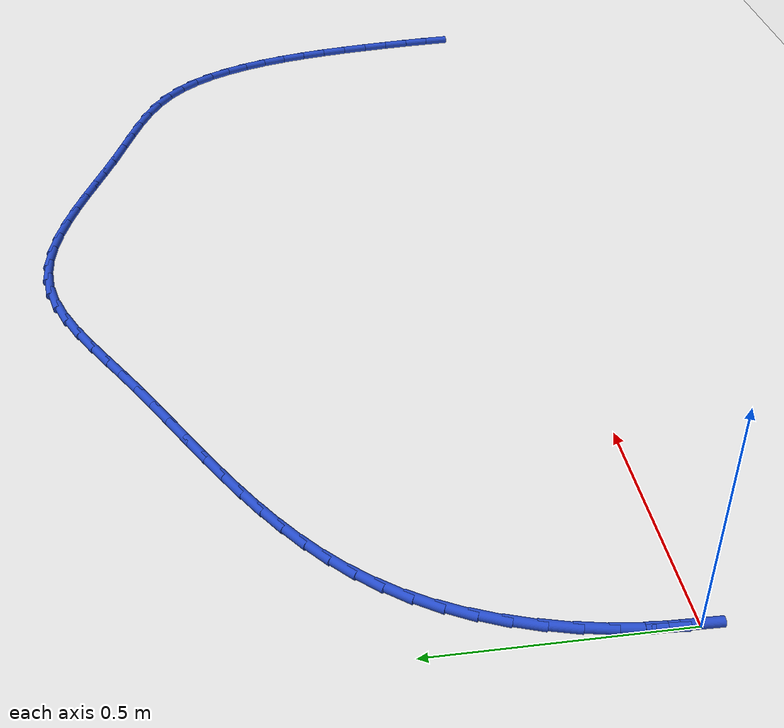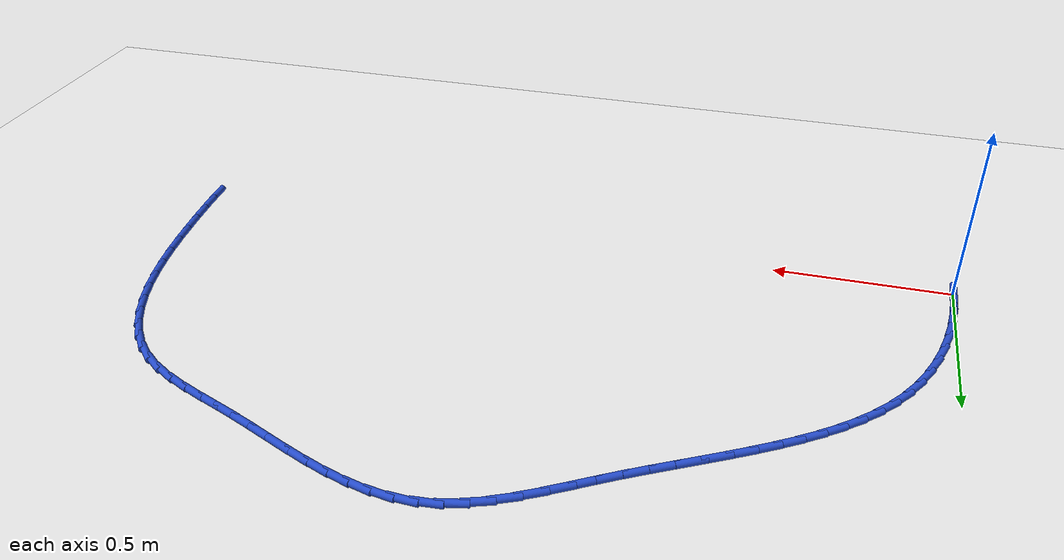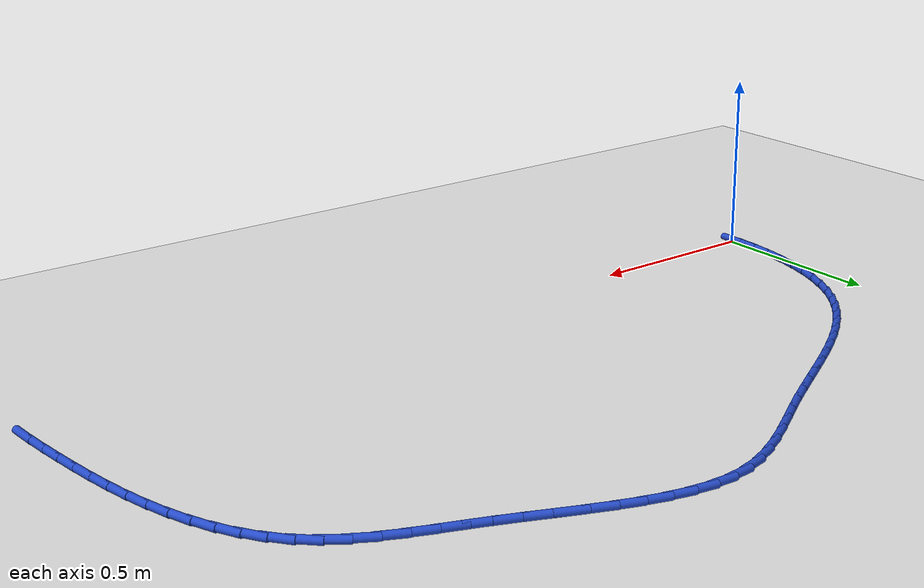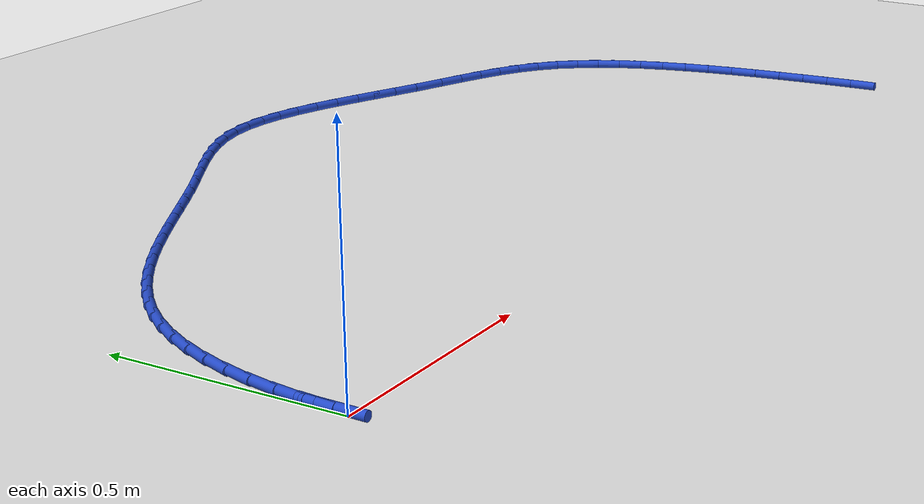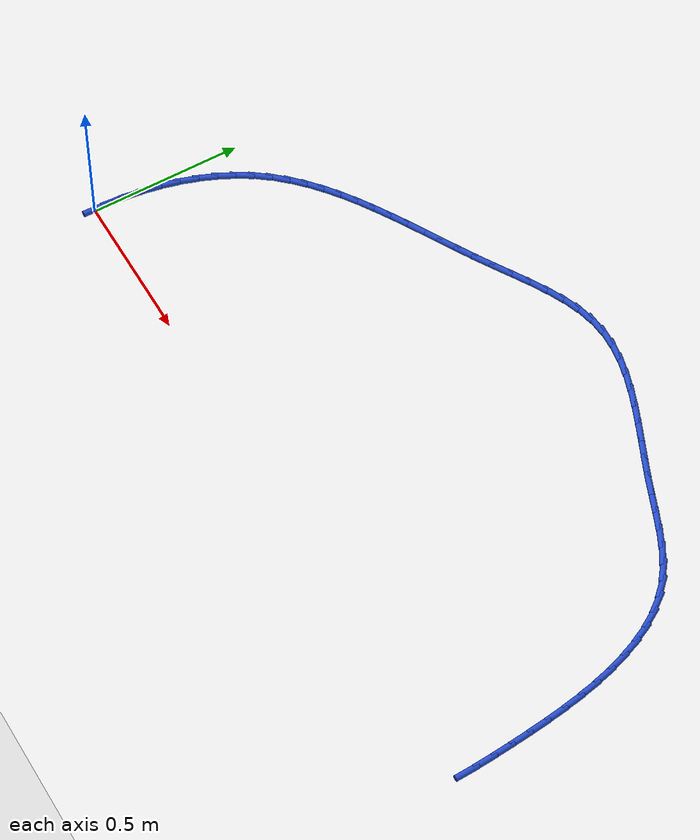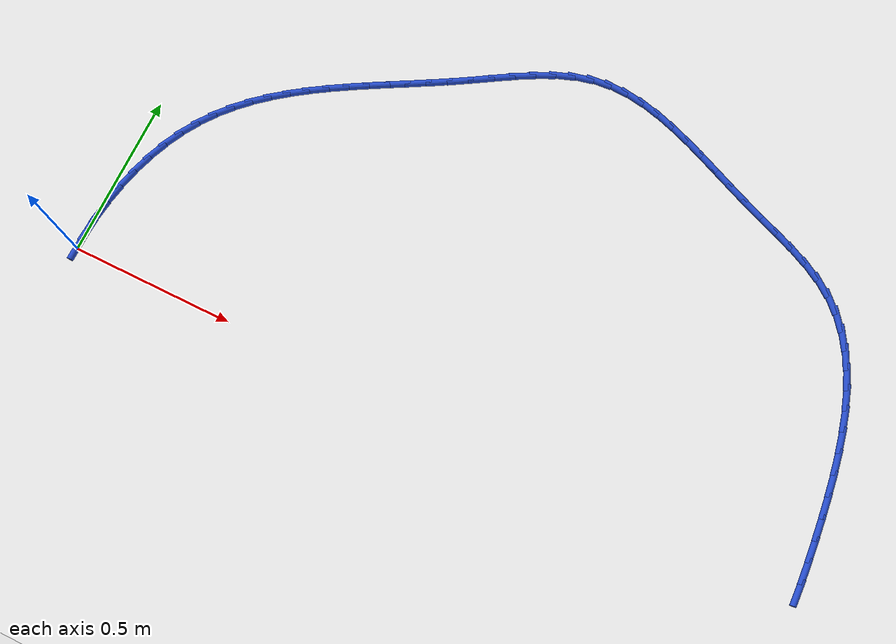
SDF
<sdf version="1.6">
 <world name="default">
  <model name="ground_plane">
   <static>1</static>
   <link name="link">
    <collision name="collision">
     <geometry><plane><normal>0 0 1</normal><size>100 100</size></plane></geometry>
     <surface><friction><ode><mu>100</mu><mu2>50</mu2></ode></friction></surface>
    </collision>
    <visual name="visual">
     <cast_shadows>0</cast_shadows>
     <geometry><plane><normal>0 0 1</normal><size>100 100</size></plane></geometry>
     <material>
      <script><uri>file://media/materials/scripts/gazebo.material</uri><name>Gazebo/WhiteGlow</name></script>
     </material>
    </visual>
   </link>
  </model>
  <model name="line">
   <link name="link_0">
    <pose>-1.734723475976807e-18 2.220446049250313e-16 0.01 0 1.57 1.5483092300568153</pose>
    <collision name="collision">
     <geometry><cylinder><radius>0.01</radius><length>0.08</length></cylinder></geometry>
    </collision>
    <visual name="visual">
     <material>
      <script><name>Gazebo/Blue</name><uri>file://media/materials/scripts/gazebo.material</uri></script>
     </material>
     <geometry><cylinder><radius>0.01</radius><length>0.08</length></cylinder></geometry>
    </visual>
   </link>
   <link name="link_1">
    <pose>0.0013868665570807798 0.06166348639705453 0.01 0 1.57 1.4916649948985448</pose>
    <collision name="collision">
     <geometry><cylinder><radius>0.01</radius><length>0.08</length></cylinder></geometry>
    </collision>
    <visual name="visual">
     <material>
      <script><name>Gazebo/Blue</name><uri>file://media/materials/scripts/gazebo.material</uri></script>
     </material>
     <geometry><cylinder><radius>0.01</radius><length>0.08</length></cylinder></geometry>
    </visual>
   </link>
   <link name="link_2">
    <pose>0.00626632204701577 0.12319747611849935 0.01 0 1.57 1.433348102655779</pose>
    <collision name="collision">
     <geometry><cylinder><radius>0.01</radius><length>0.08</length></cylinder></geometry>
    </collision>
    <visual name="visual">
     <material>
      <script><name>Gazebo/Blue</name><uri>file://media/materials/scripts/gazebo.material</uri></script>
     </material>
     <geometry><cylinder><radius>0.01</radius><length>0.08</length></cylinder></geometry>
    </visual>
   </link>
   <link name="link_3">
    <pose>0.014699400946559322 0.18416520412755932 0.01 0 1.57 1.3725222550423568</pose>
    <collision name="collision">
     <geometry><cylinder><radius>0.01</radius><length>0.08</length></cylinder></geometry>
    </collision>
    <visual name="visual">
     <material>
      <script><name>Gazebo/Blue</name><uri>file://media/materials/scripts/gazebo.material</uri></script>
     </material>
     <geometry><cylinder><radius>0.01</radius><length>0.08</length></cylinder></geometry>
    </visual>
   </link>
   <link name="link_4">
    <pose>0.026747137732465797 0.24412990538745905 0.01 0 1.57 1.3083318409830014</pose>
    <collision name="collision">
     <geometry><cylinder><radius>0.01</radius><length>0.08</length></cylinder></geometry>
    </collision>
    <visual name="visual">
     <material>
      <script><name>Gazebo/Blue</name><uri>file://media/materials/scripts/gazebo.material</uri></script>
     </material>
     <geometry><cylinder><radius>0.01</radius><length>0.08</length></cylinder></geometry>
    </visual>
   </link>
   <link name="link_5">
    <pose>0.042470566881489556 0.3026548148614234 0.01 0 1.57 1.2399010028570718</pose>
    <collision name="collision">
     <geometry><cylinder><radius>0.01</radius><length>0.08</length></cylinder></geometry>
    </collision>
    <visual name="visual">
     <material>
      <script><name>Gazebo/Blue</name><uri>file://media/materials/scripts/gazebo.material</uri></script>
     </material>
     <geometry><cylinder><radius>0.01</radius><length>0.08</length></cylinder></geometry>
    </visual>
   </link>
   <link name="link_6">
    <pose>0.06193072287038495 0.359303167512677 0.01 0 1.57 1.1663481370653717</pose>
    <collision name="collision">
     <geometry><cylinder><radius>0.01</radius><length>0.08</length></cylinder></geometry>
    </collision>
    <visual name="visual">
     <material>
      <script><name>Gazebo/Blue</name><uri>file://media/materials/scripts/gazebo.material</uri></script>
     </material>
     <geometry><cylinder><radius>0.01</radius><length>0.08</length></cylinder></geometry>
    </visual>
   </link>
   <link name="link_7">
    <pose>0.08518864017590635 0.4136381983044447 0.01 0 1.57 1.0868233922310482</pose>
    <collision name="collision">
     <geometry><cylinder><radius>0.01</radius><length>0.08</length></cylinder></geometry>
    </collision>
    <visual name="visual">
     <material>
      <script><name>Gazebo/Blue</name><uri>file://media/materials/scripts/gazebo.material</uri></script>
     </material>
     <geometry><cylinder><radius>0.01</radius><length>0.08</length></cylinder></geometry>
    </visual>
   </link>
   <link name="link_8">
    <pose>0.11230535327480809 0.465223142199951 0.01 0 1.57 1.0006316498997783</pose>
    <collision name="collision">
     <geometry><cylinder><radius>0.01</radius><length>0.08</length></cylinder></geometry>
    </collision>
    <visual name="visual">
     <material>
      <script><name>Gazebo/Blue</name><uri>file://media/materials/scripts/gazebo.material</uri></script>
     </material>
     <geometry><cylinder><radius>0.01</radius><length>0.08</length></cylinder></geometry>
    </visual>
   </link>
   <link name="link_9">
    <pose>0.1433402790097364 0.513624392563684 0.01 0 1.57 0.9120445811577528</pose>
    <collision name="collision">
     <geometry><cylinder><radius>0.01</radius><length>0.08</length></cylinder></geometry>
    </collision>
    <visual name="visual">
     <material>
      <script><name>Gazebo/Blue</name><uri>file://media/materials/scripts/gazebo.material</uri></script>
     </material>
     <geometry><cylinder><radius>0.01</radius><length>0.08</length></cylinder></geometry>
    </visual>
   </link>
   <link name="link_10">
    <pose>0.17821546290203802 0.5586765577739957 0.01 0 1.57 0.8302534823441456</pose>
    <collision name="collision">
     <geometry><cylinder><radius>0.01</radius><length>0.08</length></cylinder></geometry>
    </collision>
    <visual name="visual">
     <material>
      <script><name>Gazebo/Blue</name><uri>file://media/materials/scripts/gazebo.material</uri></script>
     </material>
     <geometry><cylinder><radius>0.01</radius><length>0.08</length></cylinder></geometry>
    </visual>
   </link>
   <link name="link_11">
    <pose>0.216612895127148 0.6006829499191728 0.01 0 1.57 0.757387444642201</pose>
    <collision name="collision">
     <geometry><cylinder><radius>0.01</radius><length>0.08</length></cylinder></geometry>
    </collision>
    <visual name="visual">
     <material>
      <script><name>Gazebo/Blue</name><uri>file://media/materials/scripts/gazebo.material</uri></script>
     </material>
     <geometry><cylinder><radius>0.01</radius><length>0.08</length></cylinder></geometry>
    </visual>
   </link>
   <link name="link_12">
    <pose>0.25819038349362466 0.6399940967203275 0.01 0 1.57 0.6941218979026438</pose>
    <collision name="collision">
     <geometry><cylinder><radius>0.01</radius><length>0.08</length></cylinder></geometry>
    </collision>
    <visual name="visual">
     <material>
      <script><name>Gazebo/Blue</name><uri>file://media/materials/scripts/gazebo.material</uri></script>
     </material>
     <geometry><cylinder><radius>0.01</radius><length>0.08</length></cylinder></geometry>
    </visual>
   </link>
   <link name="link_13">
    <pose>0.30260573581002637 0.6769605258985711 0.01 0 1.57 0.6406158530249929</pose>
    <collision name="collision">
     <geometry><cylinder><radius>0.01</radius><length>0.08</length></cylinder></geometry>
    </collision>
    <visual name="visual">
     <material>
      <script><name>Gazebo/Blue</name><uri>file://media/materials/scripts/gazebo.material</uri></script>
     </material>
     <geometry><cylinder><radius>0.01</radius><length>0.08</length></cylinder></geometry>
    </visual>
   </link>
   <link name="link_14">
    <pose>0.34951675988491115 0.7119327651750152 0.01 0 1.57 0.5966847245470859</pose>
    <collision name="collision">
     <geometry><cylinder><radius>0.01</radius><length>0.08</length></cylinder></geometry>
    </collision>
    <visual name="visual">
     <material>
      <script><name>Gazebo/Blue</name><uri>file://media/materials/scripts/gazebo.material</uri></script>
     </material>
     <geometry><cylinder><radius>0.01</radius><length>0.08</length></cylinder></geometry>
    </visual>
   </link>
   <link name="link_15">
    <pose>0.3985812635268376 0.7452613422707715 0.01 0 1.57 0.5619572739308984</pose>
    <collision name="collision">
     <geometry><cylinder><radius>0.01</radius><length>0.08</length></cylinder></geometry>
    </collision>
    <visual name="visual">
     <material>
      <script><name>Gazebo/Blue</name><uri>file://media/materials/scripts/gazebo.material</uri></script>
     </material>
     <geometry><cylinder><radius>0.01</radius><length>0.08</length></cylinder></geometry>
    </visual>
   </link>
   <link name="link_16">
    <pose>0.4494570545443641 0.777296784906952 0.01 0 1.57 0.5359956809147406</pose>
    <collision name="collision">
     <geometry><cylinder><radius>0.01</radius><length>0.08</length></cylinder></geometry>
    </collision>
    <visual name="visual">
     <material>
      <script><name>Gazebo/Blue</name><uri>file://media/materials/scripts/gazebo.material</uri></script>
     </material>
     <geometry><cylinder><radius>0.01</radius><length>0.08</length></cylinder></geometry>
    </visual>
   </link>
   <link name="link_17">
    <pose>0.5018019407460484 0.8083896208046677 0.01 0 1.57 0.5183767121347317</pose>
    <collision name="collision">
     <geometry><cylinder><radius>0.01</radius><length>0.08</length></cylinder></geometry>
    </collision>
    <visual name="visual">
     <material>
      <script><name>Gazebo/Blue</name><uri>file://media/materials/scripts/gazebo.material</uri></script>
     </material>
     <geometry><cylinder><radius>0.01</radius><length>0.08</length></cylinder></geometry>
    </visual>
   </link>
   <link name="link_18">
    <pose>0.5552737299404494 0.8388903776850307 0.01 0 1.57 0.5087406899753764</pose>
    <collision name="collision">
     <geometry><cylinder><radius>0.01</radius><length>0.08</length></cylinder></geometry>
    </collision>
    <visual name="visual">
     <material>
      <script><name>Gazebo/Blue</name><uri>file://media/materials/scripts/gazebo.material</uri></script>
     </material>
     <geometry><cylinder><radius>0.01</radius><length>0.08</length></cylinder></geometry>
    </visual>
   </link>
   <link name="link_19">
    <pose>0.609530229936125 0.8691495832691527 0.01 0 1.57 0.5068167998349166</pose>
    <collision name="collision">
     <geometry><cylinder><radius>0.01</radius><length>0.08</length></cylinder></geometry>
    </collision>
    <visual name="visual">
     <material>
      <script><name>Gazebo/Blue</name><uri>file://media/materials/scripts/gazebo.material</uri></script>
     </material>
     <geometry><cylinder><radius>0.01</radius><length>0.08</length></cylinder></geometry>
    </visual>
   </link>
   <link name="link_20">
    <pose>0.6642292485416339 0.8995177652781453 0.01 0 1.57 0.5124318027349197</pose>
    <collision name="collision">
     <geometry><cylinder><radius>0.01</radius><length>0.08</length></cylinder></geometry>
    </collision>
    <visual name="visual">
     <material>
      <script><name>Gazebo/Blue</name><uri>file://media/materials/scripts/gazebo.material</uri></script>
     </material>
     <geometry><cylinder><radius>0.01</radius><length>0.08</length></cylinder></geometry>
    </visual>
   </link>
   <link name="link_21">
    <pose>0.7190285935655341 0.93034545143312 0.01 0 1.57 0.5255067101989233</pose>
    <collision name="collision">
     <geometry><cylinder><radius>0.01</radius><length>0.08</length></cylinder></geometry>
    </collision>
    <visual name="visual">
     <material>
      <script><name>Gazebo/Blue</name><uri>file://media/materials/scripts/gazebo.material</uri></script>
     </material>
     <geometry><cylinder><radius>0.01</radius><length>0.08</length></cylinder></geometry>
    </visual>
   </link>
   <link name="link_22">
    <pose>0.7735860728163839 0.9619831694551886 0.01 0 1.57 0.5434719345874056</pose>
    <collision name="collision">
     <geometry><cylinder><radius>0.01</radius><length>0.08</length></cylinder></geometry>
    </collision>
    <visual name="visual">
     <material>
      <script><name>Gazebo/Blue</name><uri>file://media/materials/scripts/gazebo.material</uri></script>
     </material>
     <geometry><cylinder><radius>0.01</radius><length>0.08</length></cylinder></geometry>
    </visual>
   </link>
   <link name="link_23">
    <pose>0.827609369349813 0.9946218270524025 0.01 0 1.57 0.5484629013046708</pose>
    <collision name="collision">
     <geometry><cylinder><radius>0.01</radius><length>0.08</length></cylinder></geometry>
    </collision>
    <visual name="visual">
     <material>
      <script><name>Gazebo/Blue</name><uri>file://media/materials/scripts/gazebo.material</uri></script>
     </material>
     <geometry><cylinder><radius>0.01</radius><length>0.08</length></cylinder></geometry>
    </visual>
   </link>
   <link name="link_24">
    <pose>0.8811545103311225 1.0273374965264777 0.01 0 1.57 0.5325210128542791</pose>
    <collision name="collision">
     <geometry><cylinder><radius>0.01</radius><length>0.08</length></cylinder></geometry>
    </collision>
    <visual name="visual">
     <material>
      <script><name>Gazebo/Blue</name><uri>file://media/materials/scripts/gazebo.material</uri></script>
     </material>
     <geometry><cylinder><radius>0.01</radius><length>0.08</length></cylinder></geometry>
    </visual>
   </link>
   <link name="link_25">
    <pose>0.9344260601559835 1.0587308737941674 0.01 0 1.57 0.49426483245868075</pose>
    <collision name="collision">
     <geometry><cylinder><radius>0.01</radius><length>0.08</length></cylinder></geometry>
    </collision>
    <visual name="visual">
     <material>
      <script><name>Gazebo/Blue</name><uri>file://media/materials/scripts/gazebo.material</uri></script>
     </material>
     <geometry><cylinder><radius>0.01</radius><length>0.08</length></cylinder></geometry>
    </visual>
   </link>
   <link name="link_26">
    <pose>0.9876291357353948 1.0874008865102391 0.01 0 1.57 0.43128271918264427</pose>
    <collision name="collision">
     <geometry><cylinder><radius>0.01</radius><length>0.08</length></cylinder></geometry>
    </collision>
    <visual name="visual">
     <material>
      <script><name>Gazebo/Blue</name><uri>file://media/materials/scripts/gazebo.material</uri></script>
     </material>
     <geometry><cylinder><radius>0.01</radius><length>0.08</length></cylinder></geometry>
    </visual>
   </link>
   <link name="link_27">
    <pose>1.0409688539803548 1.1119464623294593 0.01 0 1.57 0.3405123062097813</pose>
    <collision name="collision">
     <geometry><cylinder><radius>0.01</radius><length>0.08</length></cylinder></geometry>
    </collision>
    <visual name="visual">
     <material>
      <script><name>Gazebo/Blue</name><uri>file://media/materials/scripts/gazebo.material</uri></script>
     </material>
     <geometry><cylinder><radius>0.01</radius><length>0.08</length></cylinder></geometry>
    </visual>
   </link>
   <link name="link_28">
    <pose>1.0946503318018612 1.130966528906594 0.01 0 1.57 0.21941987238665045</pose>
    <collision name="collision">
     <geometry><cylinder><radius>0.01</radius><length>0.08</length></cylinder></geometry>
    </collision>
    <visual name="visual">
     <material>
      <script><name>Gazebo/Blue</name><uri>file://media/materials/scripts/gazebo.material</uri></script>
     </material>
     <geometry><cylinder><radius>0.01</radius><length>0.08</length></cylinder></geometry>
    </visual>
   </link>
   <link name="link_29">
    <pose>1.1488786861109122 1.14306001389641 0.01 0 1.57 0.07546888050115942</pose>
    <collision name="collision">
     <geometry><cylinder><radius>0.01</radius><length>0.08</length></cylinder></geometry>
    </collision>
    <visual name="visual">
     <material>
      <script><name>Gazebo/Blue</name><uri>file://media/materials/scripts/gazebo.material</uri></script>
     </material>
     <geometry><cylinder><radius>0.01</radius><length>0.08</length></cylinder></geometry>
    </visual>
   </link>
   <link name="link_30">
    <pose>1.2038158311559708 1.1472139480428505 0.01 0 1.57 -0.056895710466350335</pose>
    <collision name="collision">
     <geometry><cylinder><radius>0.01</radius><length>0.08</length></cylinder></geometry>
    </collision>
    <visual name="visual">
     <material>
      <script><name>Gazebo/Blue</name><uri>file://media/materials/scripts/gazebo.material</uri></script>
     </material>
     <geometry><cylinder><radius>0.01</radius><length>0.08</length></cylinder></geometry>
    </visual>
   </link>
   <link name="link_31">
    <pose>1.25944220423555 1.144045626540192 0.01 0 1.57 -0.16636885864332096</pose>
    <collision name="collision">
     <geometry><cylinder><radius>0.01</radius><length>0.08</length></cylinder></geometry>
    </collision>
    <visual name="visual">
     <material>
      <script><name>Gazebo/Blue</name><uri>file://media/materials/scripts/gazebo.material</uri></script>
     </material>
     <geometry><cylinder><radius>0.01</radius><length>0.08</length></cylinder></geometry>
    </visual>
   </link>
   <link name="link_32">
    <pose>1.3156905992789156 1.134600339935271 0.01 0 1.57 -0.2528524446976708</pose>
    <collision name="collision">
     <geometry><cylinder><radius>0.01</radius><length>0.08</length></cylinder></geometry>
    </collision>
    <visual name="visual">
     <material>
      <script><name>Gazebo/Blue</name><uri>file://media/materials/scripts/gazebo.material</uri></script>
     </material>
     <geometry><cylinder><radius>0.01</radius><length>0.08</length></cylinder></geometry>
    </visual>
   </link>
   <link name="link_33">
    <pose>1.3724938100184767 1.1199233805433562 0.01 0 1.57 -0.31807637565107977</pose>
    <collision name="collision">
     <geometry><cylinder><radius>0.01</radius><length>0.08</length></cylinder></geometry>
    </collision>
    <visual name="visual">
     <material>
      <script><name>Gazebo/Blue</name><uri>file://media/materials/scripts/gazebo.material</uri></script>
     </material>
     <geometry><cylinder><radius>0.01</radius><length>0.08</length></cylinder></geometry>
    </visual>
   </link>
   <link name="link_34">
    <pose>1.429784630186642 1.1010600406797144 0.01 0 1.57 -0.36426945374928027</pose>
    <collision name="collision">
     <geometry><cylinder><radius>0.01</radius><length>0.08</length></cylinder></geometry>
    </collision>
    <visual name="visual">
     <material>
      <script><name>Gazebo/Blue</name><uri>file://media/materials/scripts/gazebo.material</uri></script>
     </material>
     <geometry><cylinder><radius>0.01</radius><length>0.08</length></cylinder></geometry>
    </visual>
   </link>
   <link name="link_35">
    <pose>1.4874958535158205 1.0790556126596142 0.01 0 1.57 -0.39342142745992464</pose>
    <collision name="collision">
     <geometry><cylinder><radius>0.01</radius><length>0.08</length></cylinder></geometry>
    </collision>
    <visual name="visual">
     <material>
      <script><name>Gazebo/Blue</name><uri>file://media/materials/scripts/gazebo.material</uri></script>
     </material>
     <geometry><cylinder><radius>0.01</radius><length>0.08</length></cylinder></geometry>
    </visual>
   </link>
   <link name="link_36">
    <pose>1.5455602737384213 1.054955388798323 0.01 0 1.57 -0.4069662794286493</pose>
    <collision name="collision">
     <geometry><cylinder><radius>0.01</radius><length>0.08</length></cylinder></geometry>
    </collision>
    <visual name="visual">
     <material>
      <script><name>Gazebo/Blue</name><uri>file://media/materials/scripts/gazebo.material</uri></script>
     </material>
     <geometry><cylinder><radius>0.01</radius><length>0.08</length></cylinder></geometry>
    </visual>
   </link>
   <link name="link_37">
    <pose>1.6039106845868532 1.0298046614111078 0.01 0 1.57 -0.40568276941183756</pose>
    <collision name="collision">
     <geometry><cylinder><radius>0.01</radius><length>0.08</length></cylinder></geometry>
    </collision>
    <visual name="visual">
     <material>
      <script><name>Gazebo/Blue</name><uri>file://media/materials/scripts/gazebo.material</uri></script>
     </material>
     <geometry><cylinder><radius>0.01</radius><length>0.08</length></cylinder></geometry>
    </visual>
   </link>
   <link name="link_38">
    <pose>1.662479879793525 1.0046487228132372 0.01 0 1.57 -0.389786462606815</pose>
    <collision name="collision">
     <geometry><cylinder><radius>0.01</radius><length>0.08</length></cylinder></geometry>
    </collision>
    <visual name="visual">
     <material>
      <script><name>Gazebo/Blue</name><uri>file://media/materials/scripts/gazebo.material</uri></script>
     </material>
     <geometry><cylinder><radius>0.01</radius><length>0.08</length></cylinder></geometry>
    </visual>
   </link>
   <link name="link_39">
    <pose>1.7211984300013363 0.98052683005956 0.01 0 1.57 -0.37100927067241835</pose>
    <collision name="collision">
     <geometry><cylinder><radius>0.01</radius><length>0.08</length></cylinder></geometry>
    </collision>
    <visual name="visual">
     <material>
      <script><name>Gazebo/Blue</name><uri>file://media/materials/scripts/gazebo.material</uri></script>
     </material>
     <geometry><cylinder><radius>0.01</radius><length>0.08</length></cylinder></geometry>
    </visual>
   </link>
   <link name="link_40">
    <pose>1.7797309537509105 0.9577562314018448 0.01 0 1.57 -0.3730082686079129</pose>
    <collision name="collision">
     <geometry><cylinder><radius>0.01</radius><length>0.08</length></cylinder></geometry>
    </collision>
    <visual name="visual">
     <material>
      <script><name>Gazebo/Blue</name><uri>file://media/materials/scripts/gazebo.material</uri></script>
     </material>
     <geometry><cylinder><radius>0.01</radius><length>0.08</length></cylinder></geometry>
    </visual>
   </link>
   <link name="link_41">
    <pose>1.8372271790057957 0.9352563462118075 0.01 0 1.57 -0.3997444711035956</pose>
    <collision name="collision">
     <geometry><cylinder><radius>0.01</radius><length>0.08</length></cylinder></geometry>
    </collision>
    <visual name="visual">
     <material>
      <script><name>Gazebo/Blue</name><uri>file://media/materials/scripts/gazebo.material</uri></script>
     </material>
     <geometry><cylinder><radius>0.01</radius><length>0.08</length></cylinder></geometry>
    </visual>
   </link>
   <link name="link_42">
    <pose>1.8927779026605798 0.911786607344041 0.01 0 1.57 -0.453457398120749</pose>
    <collision name="collision">
     <geometry><cylinder><radius>0.01</radius><length>0.08</length></cylinder></geometry>
    </collision>
    <visual name="visual">
     <material>
      <script><name>Gazebo/Blue</name><uri>file://media/materials/scripts/gazebo.material</uri></script>
     </material>
     <geometry><cylinder><radius>0.01</radius><length>0.08</length></cylinder></geometry>
    </visual>
   </link>
   <link name="link_43">
    <pose>1.94547392160985 0.8861064476531362 0.01 0 1.57 -0.5369845450030271</pose>
    <collision name="collision">
     <geometry><cylinder><radius>0.01</radius><length>0.08</length></cylinder></geometry>
    </collision>
    <visual name="visual">
     <material>
      <script><name>Gazebo/Blue</name><uri>file://media/materials/scripts/gazebo.material</uri></script>
     </material>
     <geometry><cylinder><radius>0.01</radius><length>0.08</length></cylinder></geometry>
    </visual>
   </link>
   <link name="link_44">
    <pose>1.9944060327481936 0.8569752999936856 0.01 0 1.57 -0.6524541163190243</pose>
    <collision name="collision">
     <geometry><cylinder><radius>0.01</radius><length>0.08</length></cylinder></geometry>
    </collision>
    <visual name="visual">
     <material>
      <script><name>Gazebo/Blue</name><uri>file://media/materials/scripts/gazebo.material</uri></script>
     </material>
     <geometry><cylinder><radius>0.01</radius><length>0.08</length></cylinder></geometry>
    </visual>
   </link>
   <link name="link_45">
    <pose>2.0386674200031107 0.823155881230278 0.01 0 1.57 -0.7872242712209677</pose>
    <collision name="collision">
     <geometry><cylinder><radius>0.01</radius><length>0.08</length></cylinder></geometry>
    </collision>
    <visual name="visual">
     <material>
      <script><name>Gazebo/Blue</name><uri>file://media/materials/scripts/gazebo.material</uri></script>
     </material>
     <geometry><cylinder><radius>0.01</radius><length>0.08</length></cylinder></geometry>
    </visual>
   </link>
   <link name="link_46">
    <pose>2.0777377403108006 0.7839426064782945 0.01 0 1.57 -0.9126902940031553</pose>
    <collision name="collision">
     <geometry><cylinder><radius>0.01</radius><length>0.08</length></cylinder></geometry>
    </collision>
    <visual name="visual">
     <material>
      <script><name>Gazebo/Blue</name><uri>file://media/materials/scripts/gazebo.material</uri></script>
     </material>
     <geometry><cylinder><radius>0.01</radius><length>0.08</length></cylinder></geometry>
    </visual>
   </link>
   <link name="link_47">
    <pose>2.1119065072401026 0.7397440678985272 0.01 0 1.57 -1.0231874859018473</pose>
    <collision name="collision">
     <geometry><cylinder><radius>0.01</radius><length>0.08</length></cylinder></geometry>
    </collision>
    <visual name="visual">
     <material>
      <script><name>Gazebo/Blue</name><uri>file://media/materials/scripts/gazebo.material</uri></script>
     </material>
     <geometry><cylinder><radius>0.01</radius><length>0.08</length></cylinder></geometry>
    </visual>
   </link>
   <link name="link_48">
    <pose>2.1415651244953495 0.6911090351171987 0.01 0 1.57 -1.1181986223695812</pose>
    <collision name="collision">
     <geometry><cylinder><radius>0.01</radius><length>0.08</length></cylinder></geometry>
    </collision>
    <visual name="visual">
     <material>
      <script><name>Gazebo/Blue</name><uri>file://media/materials/scripts/gazebo.material</uri></script>
     </material>
     <geometry><cylinder><radius>0.01</radius><length>0.08</length></cylinder></geometry>
    </visual>
   </link>
   <link name="link_49">
    <pose>2.1671049957808783 0.638586277760532 0.01 0 1.57 -1.19852916399979</pose>
    <collision name="collision">
     <geometry><cylinder><radius>0.01</radius><length>0.08</length></cylinder></geometry>
    </collision>
    <visual name="visual">
     <material>
      <script><name>Gazebo/Blue</name><uri>file://media/materials/scripts/gazebo.material</uri></script>
     </material>
     <geometry><cylinder><radius>0.01</radius><length>0.08</length></cylinder></geometry>
    </visual>
   </link>
   <link name="link_50">
    <pose>2.188917524801022 0.582724565454748 0.01 0 1.57 -1.2656162270579943</pose>
    <collision name="collision">
     <geometry><cylinder><radius>0.01</radius><length>0.08</length></cylinder></geometry>
    </collision>
    <visual name="visual">
     <material>
      <script><name>Gazebo/Blue</name><uri>file://media/materials/scripts/gazebo.material</uri></script>
     </material>
     <geometry><cylinder><radius>0.01</radius><length>0.08</length></cylinder></geometry>
    </visual>
   </link>
   <link name="link_51">
    <pose>2.207394115260115 0.5240726678260701 0.01 0 1.57 -1.3210516488800887</pose>
    <collision name="collision">
     <geometry><cylinder><radius>0.01</radius><length>0.08</length></cylinder></geometry>
    </collision>
    <visual name="visual">
     <material>
      <script><name>Gazebo/Blue</name><uri>file://media/materials/scripts/gazebo.material</uri></script>
     </material>
     <geometry><cylinder><radius>0.01</radius><length>0.08</length></cylinder></geometry>
    </visual>
   </link>
   <link name="link_52">
    <pose>2.2229261708624932 0.4631793545007194 0.01 0 1.57 -1.3663171141077204</pose>
    <collision name="collision">
     <geometry><cylinder><radius>0.01</radius><length>0.08</length></cylinder></geometry>
    </collision>
    <visual name="visual">
     <material>
      <script><name>Gazebo/Blue</name><uri>file://media/materials/scripts/gazebo.material</uri></script>
     </material>
     <geometry><cylinder><radius>0.01</radius><length>0.08</length></cylinder></geometry>
    </visual>
   </link>
   <link name="link_53">
    <pose>2.2359050953124893 0.4005933951049189 0.01 0 1.57 -1.4026635344451055</pose>
    <collision name="collision">
     <geometry><cylinder><radius>0.01</radius><length>0.08</length></cylinder></geometry>
    </collision>
    <visual name="visual">
     <material>
      <script><name>Gazebo/Blue</name><uri>file://media/materials/scripts/gazebo.material</uri></script>
     </material>
     <geometry><cylinder><radius>0.01</radius><length>0.08</length></cylinder></geometry>
    </visual>
   </link>
   <link name="link_54">
    <pose>2.2467222923144385 0.3368635592648901 0.01 0 1.57 -1.4310694914085613</pose>
    <collision name="collision">
     <geometry><cylinder><radius>0.01</radius><length>0.08</length></cylinder></geometry>
    </collision>
    <visual name="visual">
     <material>
      <script><name>Gazebo/Blue</name><uri>file://media/materials/scripts/gazebo.material</uri></script>
     </material>
     <geometry><cylinder><radius>0.01</radius><length>0.08</length></cylinder></geometry>
    </visual>
   </link>
   <link name="link_55">
    <pose>2.2557691655726755 0.2725386166068559 0.01 0 1.57 -1.4522342885942594</pose>
    <collision name="collision">
     <geometry><cylinder><radius>0.01</radius><length>0.08</length></cylinder></geometry>
    </collision>
    <visual name="visual">
     <material>
      <script><name>Gazebo/Blue</name><uri>file://media/materials/scripts/gazebo.material</uri></script>
     </material>
     <geometry><cylinder><radius>0.01</radius><length>0.08</length></cylinder></geometry>
    </visual>
   </link>
   <link name="link_56">
    <pose>2.263437118791536 0.20816733675703786 0.01 0 1.57 -1.4669076276078792</pose>
    <collision name="collision">
     <geometry><cylinder><radius>0.01</radius><length>0.08</length></cylinder></geometry>
    </collision>
    <visual name="visual">
     <material>
      <script><name>Gazebo/Blue</name><uri>file://media/materials/scripts/gazebo.material</uri></script>
     </material>
     <geometry><cylinder><radius>0.01</radius><length>0.08</length></cylinder></geometry>
    </visual>
   </link>
   <link name="link_57">
    <pose>2.270098102746776 0.14428162970858183 0.01 0 1.57 -1.4808173007741405</pose>
    <collision name="collision">
     <geometry><cylinder><radius>0.01</radius><length>0.08</length></cylinder></geometry>
    </collision>
    <visual name="visual">
     <material>
      <script><name>Gazebo/Blue</name><uri>file://media/materials/scripts/gazebo.material</uri></script>
     </material>
     <geometry><cylinder><radius>0.01</radius><length>0.08</length></cylinder></geometry>
    </visual>
   </link>
   <link name="link_58">
    <pose>2.2757959012345887 0.08112898684683183 0.01 0 1.57 -1.4987303788737627</pose>
    <collision name="collision">
     <geometry><cylinder><radius>0.01</radius><length>0.08</length></cylinder></geometry>
    </collision>
    <visual name="visual">
     <material>
      <script><name>Gazebo/Blue</name><uri>file://media/materials/scripts/gazebo.material</uri></script>
     </material>
     <geometry><cylinder><radius>0.01</radius><length>0.08</length></cylinder></geometry>
    </visual>
   </link>
   <link name="link_59">
    <pose>2.2803012481990614 0.018720250340022965 0.01 0 1.57 -1.520963188454678</pose>
    <collision name="collision">
     <geometry><cylinder><radius>0.01</radius><length>0.08</length></cylinder></geometry>
    </collision>
    <visual name="visual">
     <material>
      <script><name>Gazebo/Blue</name><uri>file://media/materials/scripts/gazebo.material</uri></script>
     </material>
     <geometry><cylinder><radius>0.01</radius><length>0.08</length></cylinder></geometry>
    </visual>
   </link>
   <link name="link_121">
    <pose>0.0013754583519954636 0.06169875891328769 0.01 0 1.57 1.5485068904420285</pose>
    <collision name="collision">
     <geometry><cylinder><radius>0.01</radius><length>0.08</length></cylinder></geometry>
    </collision>
    <visual name="visual">
     <material>
      <script><name>Gazebo/Blue</name><uri>file://media/materials/scripts/gazebo.material</uri></script>
     </material>
     <geometry><cylinder><radius>0.01</radius><length>0.08</length></cylinder></geometry>
    </visual>
   </link>
  </model>
 </world>
</sdf>
